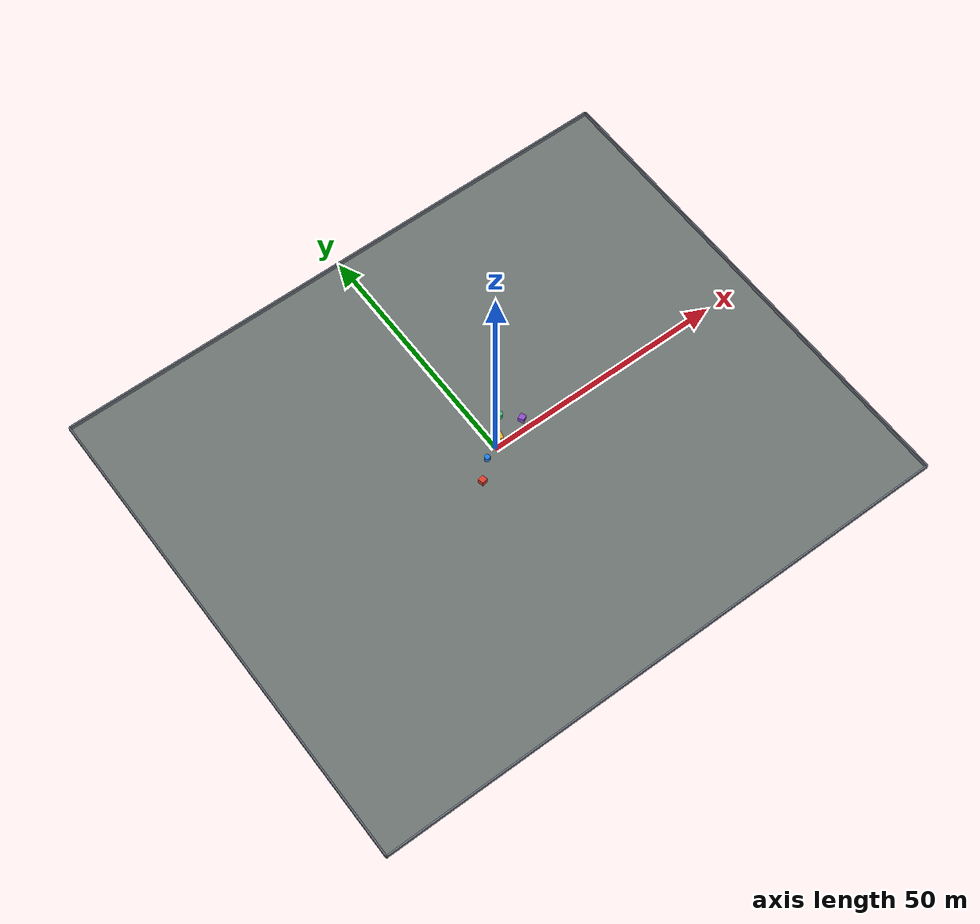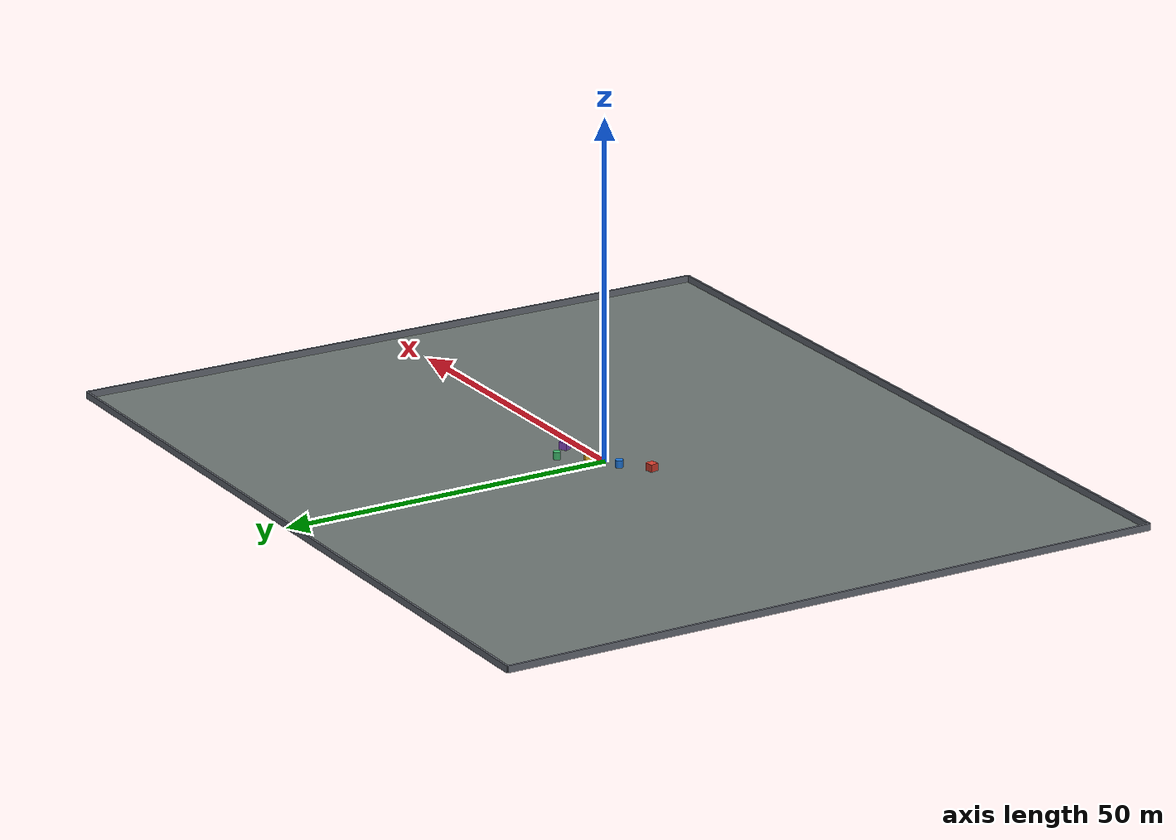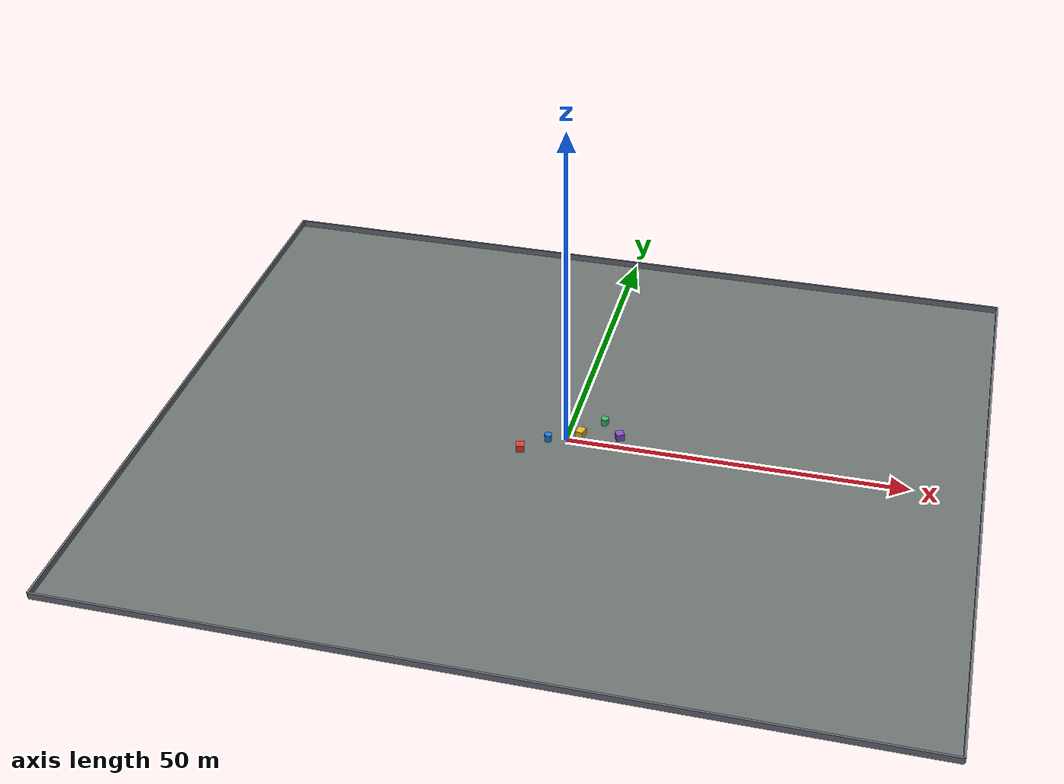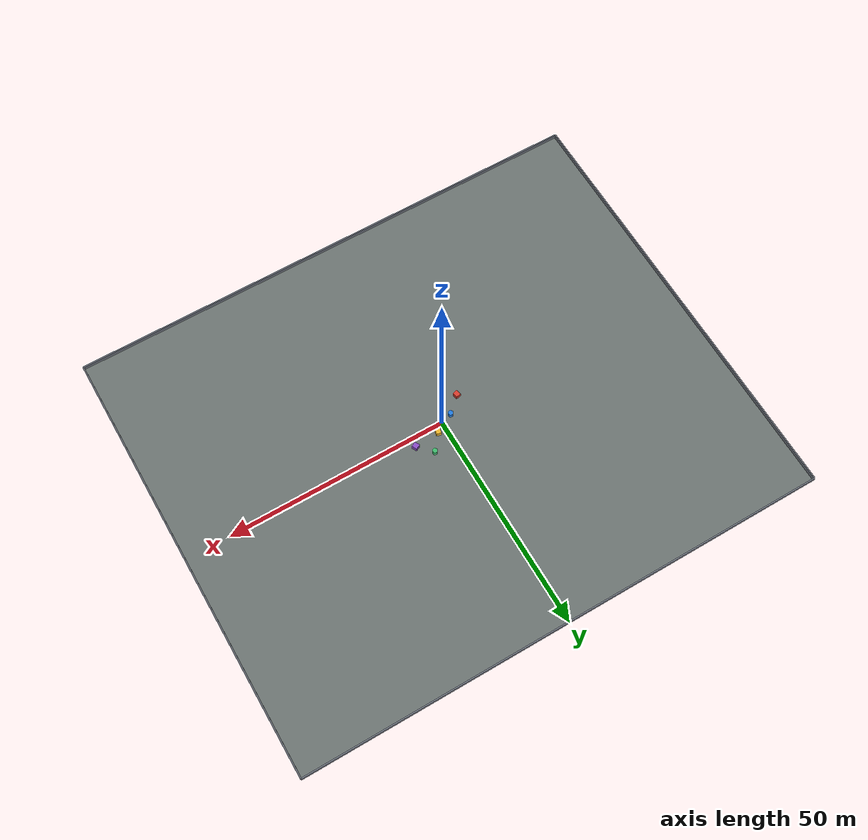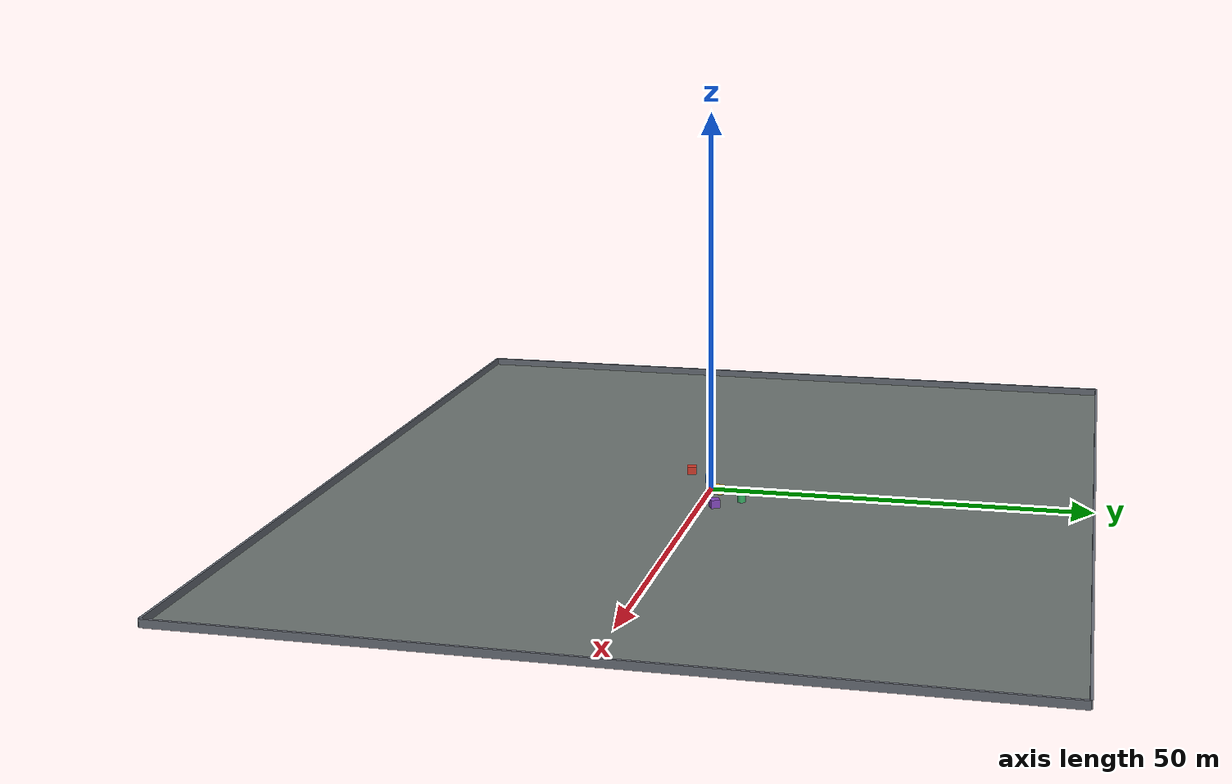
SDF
<sdf version="1.7">
  <world name="livox_fast_lio_field">
    <physics type="ode">
      <max_step_size>0.002</max_step_size>
      <real_time_update_rate>500</real_time_update_rate>
      <real_time_factor>1</real_time_factor>
    </physics>

    <light name="sun" type="directional">
      <cast_shadows>true</cast_shadows>
      <pose>0 0 10 0 0 0</pose>
      <diffuse>0.8 0.8 0.8 1</diffuse>
      <specular>0.2 0.2 0.2 1</specular>
      <attenuation>
        <range>1000</range>
        <constant>0.9</constant>
        <linear>0.01</linear>
        <quadratic>0.001</quadratic>
      </attenuation>
      <direction>-0.5 0.1 -0.9</direction>
    </light>

    <model name="large_ground">
      <static>true</static>
      <pose>0 0 -0.01 0 0 0</pose>
      <link name="link">
        <collision name="collision">
          <geometry>
            <box>
              <size>120 100 0.02</size>
            </box>
          </geometry>
        </collision>
        <visual name="visual">
          <geometry>
            <box>
              <size>120 100 0.02</size>
            </box>
          </geometry>
          <material>
            <ambient>0.36 0.39 0.38 1</ambient>
            <diffuse>0.42 0.45 0.44 1</diffuse>
          </material>
        </visual>
      </link>
    </model>

    <model name="north_wall">
      <static>true</static>
      <pose>0 50 0.5 0 0 0</pose>
      <link name="link">
        <collision name="collision">
          <geometry><box><size>120 0.3 1.0</size></box></geometry>
        </collision>
        <visual name="visual">
          <geometry><box><size>120 0.3 1.0</size></box></geometry>
          <material><ambient>0.28 0.29 0.31 1</ambient><diffuse>0.42 0.44 0.48 1</diffuse></material>
        </visual>
      </link>
    </model>

    <model name="south_wall">
      <static>true</static>
      <pose>0 -50 0.5 0 0 0</pose>
      <link name="link">
        <collision name="collision">
          <geometry><box><size>120 0.3 1.0</size></box></geometry>
        </collision>
        <visual name="visual">
          <geometry><box><size>120 0.3 1.0</size></box></geometry>
          <material><ambient>0.28 0.29 0.31 1</ambient><diffuse>0.42 0.44 0.48 1</diffuse></material>
        </visual>
      </link>
    </model>

    <model name="east_wall">
      <static>true</static>
      <pose>60 0 0.5 0 0 0</pose>
      <link name="link">
        <collision name="collision">
          <geometry><box><size>0.3 100 1.0</size></box></geometry>
        </collision>
        <visual name="visual">
          <geometry><box><size>0.3 100 1.0</size></box></geometry>
          <material><ambient>0.28 0.29 0.31 1</ambient><diffuse>0.42 0.44 0.48 1</diffuse></material>
        </visual>
      </link>
    </model>

    <model name="west_wall">
      <static>true</static>
      <pose>-60 0 0.5 0 0 0</pose>
      <link name="link">
        <collision name="collision">
          <geometry><box><size>0.3 100 1.0</size></box></geometry>
        </collision>
        <visual name="visual">
          <geometry><box><size>0.3 100 1.0</size></box></geometry>
          <material><ambient>0.28 0.29 0.31 1</ambient><diffuse>0.42 0.44 0.48 1</diffuse></material>
        </visual>
      </link>
    </model>

    <model name="box_left_low">
      <static>true</static>
      <pose>-6 -4 0.55 0 0 0.2</pose>
      <link name="link">
        <collision name="collision"><geometry><box><size>1.2 1.2 1.1</size></box></geometry></collision>
        <visual name="visual">
          <geometry><box><size>1.2 1.2 1.1</size></box></geometry>
          <material><ambient>0.65 0.18 0.14 1</ambient><diffuse>0.85 0.24 0.18 1</diffuse></material>
        </visual>
      </link>
    </model>

    <model name="cylinder_center_left">
      <static>true</static>
      <pose>-2.6 -0.8 0.55 0 0 0</pose>
      <link name="link">
        <collision name="collision"><geometry><cylinder><radius>0.55</radius><length>1.1</length></cylinder></geometry></collision>
        <visual name="visual">
          <geometry><cylinder><radius>0.55</radius><length>1.1</length></cylinder></geometry>
          <material><ambient>0.10 0.33 0.60 1</ambient><diffuse>0.12 0.48 0.88 1</diffuse></material>
        </visual>
      </link>
    </model>

    <model name="box_center_right">
      <static>true</static>
      <pose>1.8 1.4 0.55 0 0 -0.25</pose>
      <link name="link">
        <collision name="collision"><geometry><box><size>1.1 1.4 1.1</size></box></geometry></collision>
        <visual name="visual">
          <geometry><box><size>1.1 1.4 1.1</size></box></geometry>
          <material><ambient>0.70 0.55 0.12 1</ambient><diffuse>0.92 0.70 0.16 1</diffuse></material>
        </visual>
      </link>
    </model>

    <model name="cylinder_upper_right">
      <static>true</static>
      <pose>4.6 5.0 0.55 0 0 0</pose>
      <link name="link">
        <collision name="collision"><geometry><cylinder><radius>0.55</radius><length>1.1</length></cylinder></geometry></collision>
        <visual name="visual">
          <geometry><cylinder><radius>0.55</radius><length>1.1</length></cylinder></geometry>
          <material><ambient>0.20 0.52 0.30 1</ambient><diffuse>0.24 0.72 0.42 1</diffuse></material>
        </visual>
      </link>
    </model>

    <model name="box_side_passage">
      <static>true</static>
      <pose>7.5 2.0 0.55 0 0 0.45</pose>
      <link name="link">
        <collision name="collision"><geometry><box><size>1.2 1.2 1.1</size></box></geometry></collision>
        <visual name="visual">
          <geometry><box><size>1.2 1.2 1.1</size></box></geometry>
          <material><ambient>0.38 0.20 0.58 1</ambient><diffuse>0.54 0.30 0.78 1</diffuse></material>
        </visual>
      </link>
    </model>
  </world>
</sdf>
